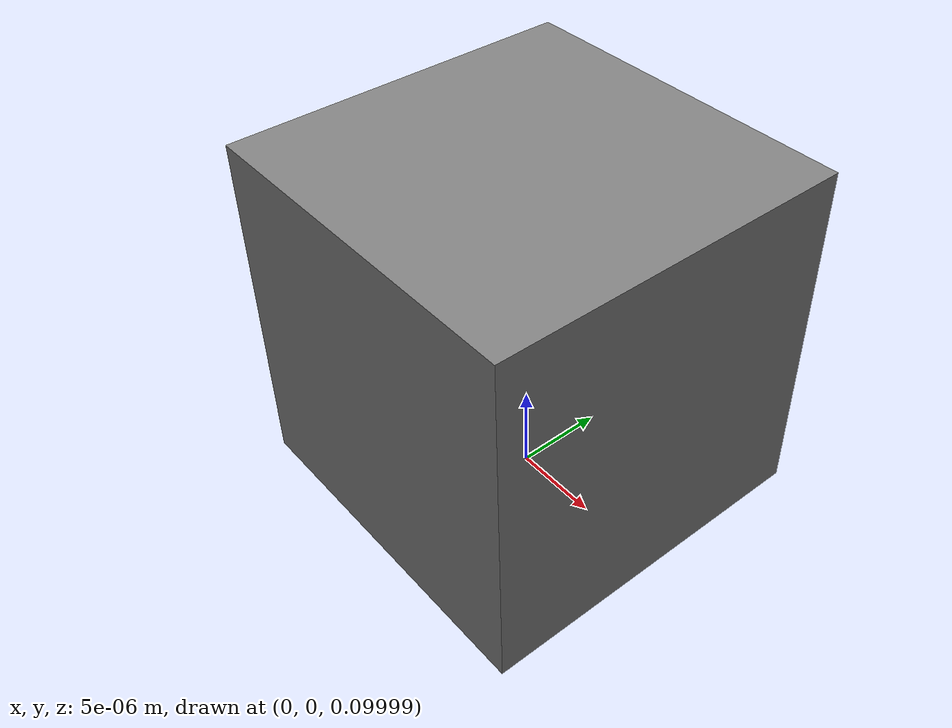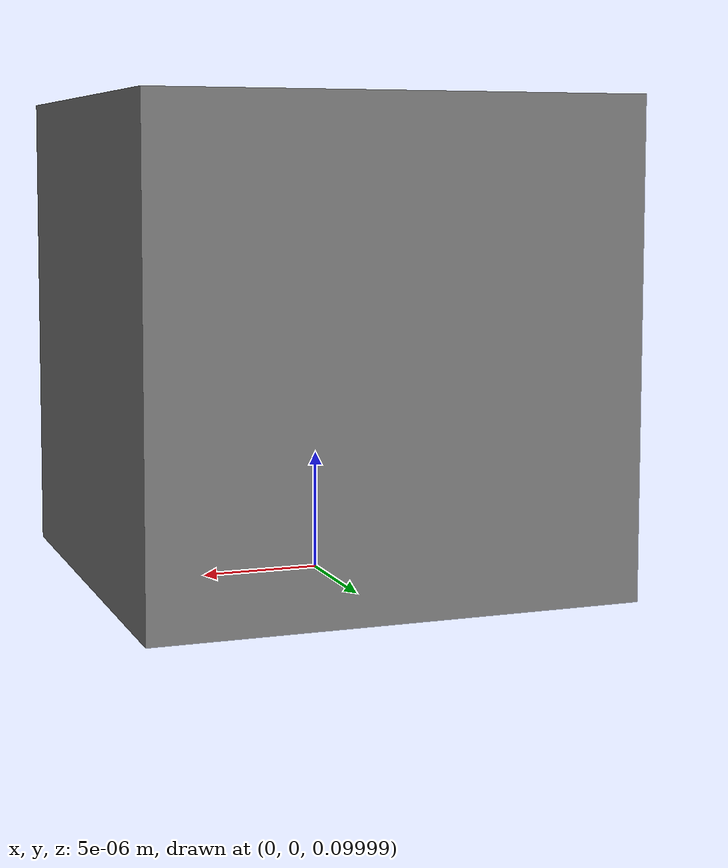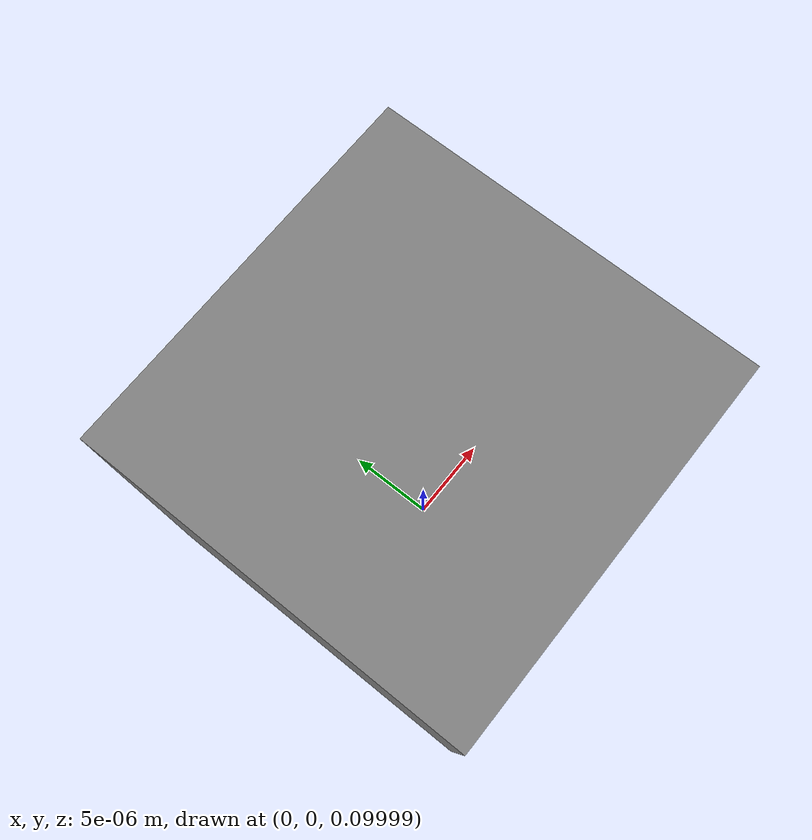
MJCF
<mujoco model="from_mesh">
  <compiler meshdir="." autolimits="true"/>
  <asset>
    <mesh name="mesh" file="mesh.obj" scale="0.001 0.001 0.001"/>
  </asset>
  <worldbody>
    <body name="mesh_body" pos="0 0 0.1">
      <geom type="mesh" mesh="mesh" contype="1" conaffinity="1"/>
      <joint type="free"/>
    </body>
  </worldbody>
</mujoco>
